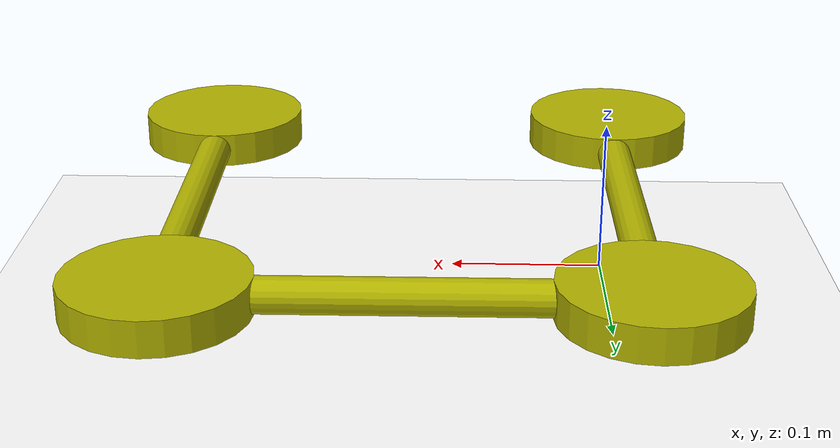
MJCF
<?xml version="1.0" encoding="utf-8"?>
<mujoco>
    <option gravity="0 0 -9.81" timestep="0.002">
        <flag warmstart="enable"/>
    </option>

    <visual>
        <global offwidth="800" offheight="800"/>
        <quality shadowsize="4096"/>
        <map force="0.1" fogstart="3" fogend="5" znear="0.1" zfar="50"/>
    </visual>

    <asset>
        <texture type="skybox" builtin="gradient" rgb1="0.3 0.5 0.7" rgb2="0 0 0" width="512" height="512"/>
        <texture name="texplane" type="2d" builtin="checker" rgb1=".2 .3 .4" rgb2=".1 .2 .3" width="512" height="512" mark="cross" markrgb=".8 .8 .8"/>
        <material name="groundplane" texture="texplane" texrepeat="5 5" texuniform="true" reflectance="0.2"/>
        <material name="arm1" rgba="0.8 0.3 0.3 1"/>
        <material name="arm2" rgba="0.3 0.8 0.3 1"/>
        <material name="arm3" rgba="0.3 0.3 0.8 1"/>
    </asset>

    <default>
        <joint damping="0.2" armature="0.01"/>
        <geom contype="1" conaffinity="1" friction="1 0.1 0.1" rgba="0.7 0.7 0 1"/>
    </default>

    <worldbody>
        <!-- Light source -->
        <light name="spotlight" mode="targetbody" target="world" diffuse=".8 .8 .8" specular="0.3 0.3 0.3" pos="0 -6 4" dir="0 1 -1"/>
        <light name="top" pos="0 0 3" dir="0 0 -1" diffuse="0.6 0.6 0.6" specular="0.3 0.3 0.3"/>

        <!-- Ground plane -->
        <geom name="ground" type="plane" material="groundplane" size="5 5 0.1" rgba="1 1 1 1"/>

        <!-- Default camera -->
        <camera name="fixed" pos="0 -3 2" xyaxes="1 0 0 0 0.7 0.7"/>

        <!-- Mechanism base -->
        <body name="base" pos="0 0 0.1">
            <geom type="cylinder" size="0.05 0.01" material="arm1"/>
            <joint name="joint1" type="hinge" axis="0 0 1" pos="0 0 -0.05"/>
            <geom type="capsule" size="0.01" fromto="0 0 0 0 0.25 0" material="arm2"/>

            <!-- First link -->
            <body name="link1" pos="0 0.25 0">
                <geom type="cylinder" size="0.05 0.01" material="arm1"/>
                <joint name="joint2" type="hinge" axis="0 0 1" pos="0 0 -0.05"/>
                <geom type="capsule" size="0.01" fromto="0 0 0 0.25 0 0" material="arm2"/>

                <!-- Second link -->
                <body name="link2" pos="0.25 0 0">
                    <geom type="cylinder" size="0.05 0.01" material="arm1"/>
                    <joint name="joint3" type="hinge" axis="0 0 1" pos="0 0 -0.05"/>
                    <geom type="capsule" size="0.01" fromto="0 0 0 0 -0.25 0" material="arm2"/>

                    <site name="c1" pos="0 -0.25 0"/>
                </body>
            </body>
        </body>

        <!-- Mechanism end-->
        <body name="end" pos="0.25 0 0.1">
            <geom type="cylinder" size="0.05 0.01" material="arm1"/>
            <joint name="joint4" type="hinge" axis="0 0 1" pos="0 0 -0.05"/>
            <site name="c2" pos="0 0 0"/>
        </body>
    </worldbody>

    <tendon>
        <spatial name="connection" limited="true" range="0 0.0000001" width="0.003" rgba="0.8 0.8 0.8 1">
            <site site="c1"/>
            <site site="c2"/>
        </spatial>
    </tendon>

    <actuator>
        <motor joint="joint1" name="motor1" gear="100" ctrlrange="-0.01 0.01"/>
    </actuator>
</mujoco>
